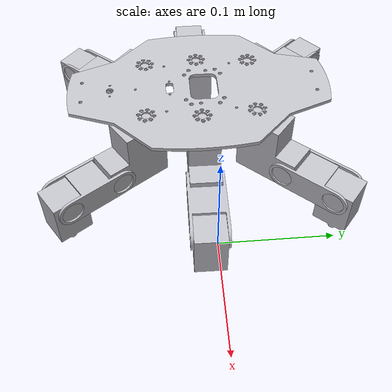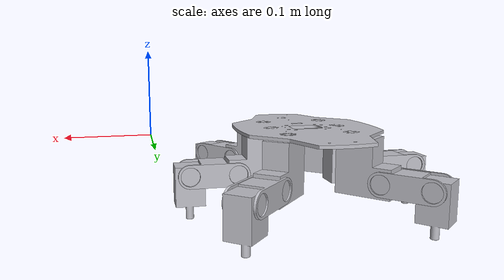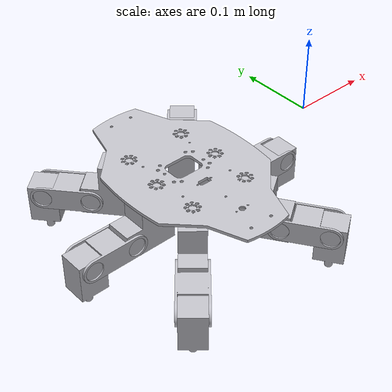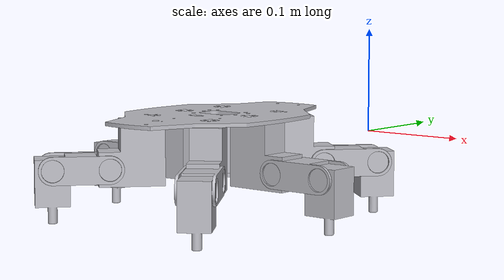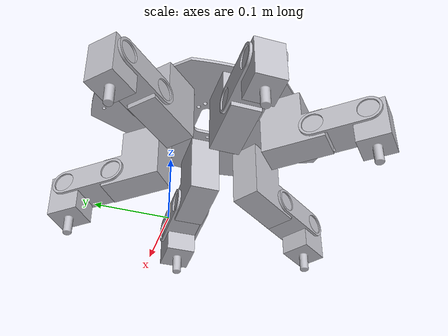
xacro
<?xml version="1.0" ?>
<robot name="(Unsaved)" xmlns:xacro="http://www.ros.org/wiki/xacro">

<xacro:include filename="materials.xacro" />

<link name="base_link">
  <inertial>
    <origin xyz="-0.19747326793103112 0.0011545818939354344 0.001999156859975229" rpy="0 0 0"/>
    <mass value="1.0602977360982548"/>
    <inertia ixx="0.005088" iyy="0.002124" izz="0.007209" ixy="1.5e-05" iyz="1e-06" ixz="0.0"/>
  </inertial>
  <visual>
    <origin xyz="0 0 0" rpy="0 0 0"/>
    <geometry>
      <mesh filename="base_link.stl" scale="0.001 0.001 0.001"/>
    </geometry>
    <material name="silver"/>
  </visual>
  <collision>
    <origin xyz="0 0 0" rpy="0 0 0"/>
    <geometry>
      <mesh filename="base_link.stl" scale="0.001 0.001 0.001"/>
    </geometry>
  </collision>
</link>

<link name="teta1_1">
  <inertial>
    <origin xyz="0.007457738610655351 -0.033495925310553426 0.0005597644070481703" rpy="0 0 0"/>
    <mass value="0.322485513471676"/>
    <inertia ixx="7.4e-05" iyy="7.3e-05" izz="9.9e-05" ixy="3e-06" iyz="1e-06" ixz="-1e-06"/>
  </inertial>
  <visual>
    <origin xyz="0.114018 0.08132 0.0515" rpy="0 0 0"/>
    <geometry>
      <mesh filename="teta1_1.stl" scale="0.001 0.001 0.001"/>
    </geometry>
    <material name="silver"/>
  </visual>
  <collision>
    <origin xyz="0.114018 0.08132 0.0515" rpy="0 0 0"/>
    <geometry>
      <mesh filename="teta1_1.stl" scale="0.001 0.001 0.001"/>
    </geometry>
  </collision>
</link>

<link name="tibia1_1">
  <inertial>
    <origin xyz="0.01300075031251191 0.01014451022429283 -0.01383993691310137" rpy="0 0 0"/>
    <mass value="0.5005531081408972"/>
    <inertia ixx="0.000168" iyy="0.000167" izz="0.000102" ixy="5e-06" iyz="-3e-06" ixz="3e-06"/>
  </inertial>
  <visual>
    <origin xyz="0.099235 0.14816 0.049792" rpy="0 0 0"/>
    <geometry>
      <mesh filename="tibia1_1.stl" scale="0.001 0.001 0.001"/>
    </geometry>
    <material name="silver"/>
  </visual>
  <collision>
    <origin xyz="0.099235 0.14816 0.049792" rpy="0 0 0"/>
    <geometry>
      <mesh filename="tibia1_1.stl" scale="0.001 0.001 0.001"/>
    </geometry>
  </collision>
</link>

<link name="coxa1_1">
  <inertial>
    <origin xyz="0.012623331280600614 -0.014399972809350028 -0.03845464138452408" rpy="0 0 0"/>
    <mass value="1.0829342534788695"/>
    <inertia ixx="0.000688" iyy="0.00065" izz="0.000489" ixy="0.000143" iyz="-7.9e-05" ixz="6.9e-05"/>
  </inertial>
  <visual>
    <origin xyz="0.1571 0.05727 -0.0" rpy="0 0 0"/>
    <geometry>
      <mesh filename="coxa1_1.stl" scale="0.001 0.001 0.001"/>
    </geometry>
    <material name="silver"/>
  </visual>
  <collision>
    <origin xyz="0.1571 0.05727 -0.0" rpy="0 0 0"/>
    <geometry>
      <mesh filename="coxa1_1.stl" scale="0.001 0.001 0.001"/>
    </geometry>
  </collision>
</link>

<link name="teta2_1">
  <inertial>
    <origin xyz="0.03080650855798238 -0.01509942070888103 0.0009294869219693275" rpy="0 0 0"/>
    <mass value="0.322485513471676"/>
    <inertia ixx="7.1e-05" iyy="7.6e-05" izz="9.9e-05" ixy="-0.0" iyz="-0.0" ixz="-1e-06"/>
  </inertial>
  <visual>
    <origin xyz="0.106659 -0.01862 0.0515" rpy="0 0 0"/>
    <geometry>
      <mesh filename="teta2_1.stl" scale="0.001 0.001 0.001"/>
    </geometry>
    <material name="silver"/>
  </visual>
  <collision>
    <origin xyz="0.106659 -0.01862 0.0515" rpy="0 0 0"/>
    <geometry>
      <mesh filename="teta2_1.stl" scale="0.001 0.001 0.001"/>
    </geometry>
  </collision>
</link>

<link name="tibia2_1">
  <inertial>
    <origin xyz="-0.0011772196856956324 0.01642612539978206 -0.013866134636234297" rpy="0 0 0"/>
    <mass value="0.5005531081408972"/>
    <inertia ixx="0.000163" iyy="0.000172" izz="0.000101" ixy="-0.0" iyz="0.0" ixz="-2e-06"/>
  </inertial>
  <visual>
    <origin xyz="0.045218 0.011587 0.050239" rpy="0 0 0"/>
    <geometry>
      <mesh filename="tibia2_1.stl" scale="0.001 0.001 0.001"/>
    </geometry>
    <material name="silver"/>
  </visual>
  <collision>
    <origin xyz="0.045218 0.011587 0.050239" rpy="0 0 0"/>
    <geometry>
      <mesh filename="tibia2_1.stl" scale="0.001 0.001 0.001"/>
    </geometry>
  </collision>
</link>

<link name="coxa2_1">
  <inertial>
    <origin xyz="0.019130272556860894 0.0008632369545831863 -0.03845464138452424" rpy="0 0 0"/>
    <mass value="1.0829342534788695"/>
    <inertia ixx="0.000525" iyy="0.000813" izz="0.000489" ixy="-1.3e-05" iyz="5e-06" ixz="0.000105"/>
  </inertial>
  <visual>
    <origin xyz="0.152351 -0.0 -0.0" rpy="0 0 0"/>
    <geometry>
      <mesh filename="coxa2_1.stl" scale="0.001 0.001 0.001"/>
    </geometry>
    <material name="silver"/>
  </visual>
  <collision>
    <origin xyz="0.152351 -0.0 -0.0" rpy="0 0 0"/>
    <geometry>
      <mesh filename="coxa2_1.stl" scale="0.001 0.001 0.001"/>
    </geometry>
  </collision>
</link>

<link name="teta3_1">
  <inertial>
    <origin xyz="0.03205389994058132 0.011802607043990956 -0.0002969308644088231" rpy="0 0 0"/>
    <mass value="0.322485513471676"/>
    <inertia ixx="7.4e-05" iyy="7.3e-05" izz="9.9e-05" ixy="-3e-06" iyz="-0.0" ixz="-0.0"/>
  </inertial>
  <visual>
    <origin xyz="0.139127 -0.103221 0.0515" rpy="0 0 0"/>
    <geometry>
      <mesh filename="teta3_1.stl" scale="0.001 0.001 0.001"/>
    </geometry>
    <material name="silver"/>
  </visual>
  <collision>
    <origin xyz="0.139127 -0.103221 0.0515" rpy="0 0 0"/>
    <geometry>
      <mesh filename="teta3_1.stl" scale="0.001 0.001 0.001"/>
    </geometry>
  </collision>
</link>

<link name="tibia3_1">
  <inertial>
    <origin xyz="-0.012443498606944797 0.010778592092196643 -0.013872883963235084" rpy="0 0 0"/>
    <mass value="0.5005531081408972"/>
    <inertia ixx="0.000168" iyy="0.000167" izz="0.000101" ixy="-4e-06" iyz="0.0" ixz="-0.0"/>
  </inertial>
  <visual>
    <origin xyz="0.074899 -0.126966 0.0515" rpy="0 0 0"/>
    <geometry>
      <mesh filename="tibia3_1.stl" scale="0.001 0.001 0.001"/>
    </geometry>
    <material name="silver"/>
  </visual>
  <collision>
    <origin xyz="0.074899 -0.126966 0.0515" rpy="0 0 0"/>
    <geometry>
      <mesh filename="tibia3_1.stl" scale="0.001 0.001 0.001"/>
    </geometry>
  </collision>
</link>

<link name="coxa3_1">
  <inertial>
    <origin xyz="0.012550506304740416 0.01446349281278922 -0.038454641384523994" rpy="0 0 0"/>
    <mass value="1.0829342534788695"/>
    <inertia ixx="0.000689" iyy="0.000649" izz="0.000489" ixy="-0.000143" iyz="7.9e-05" ixz="6.9e-05"/>
  </inertial>
  <visual>
    <origin xyz="0.1571 -0.05727 -0.0" rpy="0 0 0"/>
    <geometry>
      <mesh filename="coxa3_1.stl" scale="0.001 0.001 0.001"/>
    </geometry>
    <material name="silver"/>
  </visual>
  <collision>
    <origin xyz="0.1571 -0.05727 -0.0" rpy="0 0 0"/>
    <geometry>
      <mesh filename="coxa3_1.stl" scale="0.001 0.001 0.001"/>
    </geometry>
  </collision>
</link>

<link name="teta4_1">
  <inertial>
    <origin xyz="-0.007231179844230107 0.033548934178161266 -0.0002969308644086843" rpy="0 0 0"/>
    <mass value="0.322485513471676"/>
    <inertia ixx="7.4e-05" iyy="7.3e-05" izz="9.9e-05" ixy="3e-06" iyz="0.0" ixz="-0.0"/>
  </inertial>
  <visual>
    <origin xyz="0.280518 -0.081614 0.0515" rpy="0 0 0"/>
    <geometry>
      <mesh filename="teta4_1.stl" scale="0.001 0.001 0.001"/>
    </geometry>
    <material name="silver"/>
  </visual>
  <collision>
    <origin xyz="0.280518 -0.081614 0.0515" rpy="0 0 0"/>
    <geometry>
      <mesh filename="teta4_1.stl" scale="0.001 0.001 0.001"/>
    </geometry>
  </collision>
</link>

<link name="tibia4_1">
  <inertial>
    <origin xyz="-0.012444027191681306 -0.010778842746671374 -0.013872883963234932" rpy="0 0 0"/>
    <mass value="0.5005531081408972"/>
    <inertia ixx="0.000168" iyy="0.000167" izz="0.000101" ixy="4e-06" iyz="-0.0" ixz="-0.0"/>
  </inertial>
  <visual>
    <origin xyz="0.294859 -0.148572 0.0515" rpy="0 0 0"/>
    <geometry>
      <mesh filename="tibia4_1.stl" scale="0.001 0.001 0.001"/>
    </geometry>
    <material name="silver"/>
  </visual>
  <collision>
    <origin xyz="0.294859 -0.148572 0.0515" rpy="0 0 0"/>
    <geometry>
      <mesh filename="tibia4_1.stl" scale="0.001 0.001 0.001"/>
    </geometry>
  </collision>
</link>

<link name="coxa4_1">
  <inertial>
    <origin xyz="-0.012525182858772466 0.014485940570305444 -0.03845464138452389" rpy="0 0 0"/>
    <mass value="1.0829342534788695"/>
    <inertia ixx="0.00069" iyy="0.000648" izz="0.000489" ixy="0.000143" iyz="8e-05" ixz="-6.9e-05"/>
  </inertial>
  <visual>
    <origin xyz="0.237601 -0.05727 -0.0" rpy="0 0 0"/>
    <geometry>
      <mesh filename="coxa4_1.stl" scale="0.001 0.001 0.001"/>
    </geometry>
    <material name="silver"/>
  </visual>
  <collision>
    <origin xyz="0.237601 -0.05727 -0.0" rpy="0 0 0"/>
    <geometry>
      <mesh filename="coxa4_1.stl" scale="0.001 0.001 0.001"/>
    </geometry>
  </collision>
</link>

<link name="teta5_1">
  <inertial>
    <origin xyz="-0.03014949429074193 0.016394643449314152 -0.0002969308644087121" rpy="0 0 0"/>
    <mass value="0.322485513471676"/>
    <inertia ixx="7.1e-05" iyy="7.6e-05" izz="9.9e-05" ixy="-0.0" iyz="-0.0" ixz="-0.0"/>
  </inertial>
  <visual>
    <origin xyz="0.288793 0.016662 0.0515" rpy="0 0 0"/>
    <geometry>
      <mesh filename="teta5_1.stl" scale="0.001 0.001 0.001"/>
    </geometry>
    <material name="silver"/>
  </visual>
  <collision>
    <origin xyz="0.288793 0.016662 0.0515" rpy="0 0 0"/>
    <geometry>
      <mesh filename="teta5_1.stl" scale="0.001 0.001 0.001"/>
    </geometry>
  </collision>
</link>

<link name="tibia6_1">
  <inertial>
    <origin xyz="5.772391614522476e-05 -0.016462667283913355 -0.013872883963234946" rpy="0 0 0"/>
    <mass value="0.5005531081408972"/>
    <inertia ixx="0.000163" iyy="0.000172" izz="0.000101" ixy="-0.0" iyz="-0.0" ixz="0.0"/>
  </inertial>
  <visual>
    <origin xyz="0.348908 -0.016128 0.0515" rpy="0 0 0"/>
    <geometry>
      <mesh filename="tibia6_1.stl" scale="0.001 0.001 0.001"/>
    </geometry>
    <material name="silver"/>
  </visual>
  <collision>
    <origin xyz="0.348908 -0.016128 0.0515" rpy="0 0 0"/>
    <geometry>
      <mesh filename="tibia6_1.stl" scale="0.001 0.001 0.001"/>
    </geometry>
  </collision>
</link>

<link name="coxa5_1">
  <inertial>
    <origin xyz="-0.01914926572398204 -4.970195210862727e-05 -0.038454641384523945" rpy="0 0 0"/>
    <mass value="1.0829342534788695"/>
    <inertia ixx="0.000525" iyy="0.000813" izz="0.000489" ixy="-0.0" iyz="-0.0" ixz="-0.000105"/>
  </inertial>
  <visual>
    <origin xyz="0.242351 -0.0 -0.0" rpy="0 0 0"/>
    <geometry>
      <mesh filename="coxa5_1.stl" scale="0.001 0.001 0.001"/>
    </geometry>
    <material name="silver"/>
  </visual>
  <collision>
    <origin xyz="0.242351 -0.0 -0.0" rpy="0 0 0"/>
    <geometry>
      <mesh filename="coxa5_1.stl" scale="0.001 0.001 0.001"/>
    </geometry>
  </collision>
</link>

<link name="teta6_1">
  <inertial>
    <origin xyz="-0.03217417984423032 -0.011941934178161306 -0.0002969308644086427" rpy="0 0 0"/>
    <mass value="0.322485513471676"/>
    <inertia ixx="7.4e-05" iyy="7.3e-05" izz="9.9e-05" ixy="-3e-06" iyz="-0.0" ixz="-0.0"/>
  </inertial>
  <visual>
    <origin xyz="0.255575 0.103221 0.0515" rpy="0 0 0"/>
    <geometry>
      <mesh filename="teta6_1.stl" scale="0.001 0.001 0.001"/>
    </geometry>
    <material name="silver"/>
  </visual>
  <collision>
    <origin xyz="0.255575 0.103221 0.0515" rpy="0 0 0"/>
    <geometry>
      <mesh filename="teta6_1.stl" scale="0.001 0.001 0.001"/>
    </geometry>
  </collision>
</link>

<link name="tibia5_1">
  <inertial>
    <origin xyz="0.012443907652835318 -0.010778592092196587 -0.013872883963234918" rpy="0 0 0"/>
    <mass value="0.5005531081408972"/>
    <inertia ixx="0.000168" iyy="0.000167" izz="0.000101" ixy="-4e-06" iyz="-0.0" ixz="0.0"/>
  </inertial>
  <visual>
    <origin xyz="0.319803 0.126966 0.0515" rpy="0 0 0"/>
    <geometry>
      <mesh filename="tibia5_1.stl" scale="0.001 0.001 0.001"/>
    </geometry>
    <material name="silver"/>
  </visual>
  <collision>
    <origin xyz="0.319803 0.126966 0.0515" rpy="0 0 0"/>
    <geometry>
      <mesh filename="tibia5_1.stl" scale="0.001 0.001 0.001"/>
    </geometry>
  </collision>
</link>

<link name="coxa6_1">
  <inertial>
    <origin xyz="-0.012551097258850008 -0.014463492812789358 -0.03845464138452392" rpy="0 0 0"/>
    <mass value="1.0829342534788695"/>
    <inertia ixx="0.000689" iyy="0.000649" izz="0.000489" ixy="-0.000143" iyz="-7.9e-05" ixz="-6.9e-05"/>
  </inertial>
  <visual>
    <origin xyz="0.237601 0.05727 -0.0" rpy="0 0 0"/>
    <geometry>
      <mesh filename="coxa6_1.stl" scale="0.001 0.001 0.001"/>
    </geometry>
    <material name="silver"/>
  </visual>
  <collision>
    <origin xyz="0.237601 0.05727 -0.0" rpy="0 0 0"/>
    <geometry>
      <mesh filename="coxa6_1.stl" scale="0.001 0.001 0.001"/>
    </geometry>
  </collision>
</link>

<joint name="Revolute 1" type="revolute">
  <origin xyz="0.043082 -0.02405 -0.0515" rpy="0 0 0"/>
  <parent link="coxa1_1"/>
  <child link="teta1_1"/>
  <axis xyz="0.75136 0.659893 -0.0"/>
  <limit upper="1.570796" lower="-1.570796" effort="100" velocity="100"/>
</joint>

<joint name="Revolute 2" type="revolute">
  <origin xyz="0.014783 -0.06684 0.001708" rpy="0 0 0"/>
  <parent link="teta1_1"/>
  <child link="tibia1_1"/>
  <axis xyz="0.75136 0.659893 -0.0"/>
  <limit upper="1.612352" lower="-1.570796" effort="100" velocity="100"/>
</joint>

<joint name="Revolute 3" type="revolute">
  <origin xyz="-0.1571 -0.05727 0.0" rpy="0 0 0"/>
  <parent link="base_link"/>
  <child link="coxa1_1"/>
  <axis xyz="0.0 0.0 1.0"/>
  <limit upper="1.570796" lower="-0.785398" effort="100" velocity="100"/>
</joint>

<joint name="Revolute 4" type="revolute">
  <origin xyz="0.045692 0.01862 -0.0515" rpy="0 0 0"/>
  <parent link="coxa2_1"/>
  <child link="teta2_1"/>
  <axis xyz="-0.045973 0.998943 -0.0"/>
  <limit upper="1.570796" lower="-1.570796" effort="100" velocity="100"/>
</joint>

<joint name="Revolute 5" type="revolute">
  <origin xyz="0.061441 -0.030207 0.001261" rpy="0 0 0"/>
  <parent link="teta2_1"/>
  <child link="tibia2_1"/>
  <axis xyz="0.045973 -0.998943 0.0"/>
  <limit upper="1.570796" lower="-1.570796" effort="100" velocity="100"/>
</joint>

<joint name="Revolute 6" type="revolute">
  <origin xyz="-0.152351 0.0 0.0" rpy="0 0 0"/>
  <parent link="base_link"/>
  <child link="coxa2_1"/>
  <axis xyz="0.0 0.0 -1.0"/>
  <limit upper="1.570796" lower="-1.570796" effort="100" velocity="100"/>
</joint>

<joint name="Revolute 7" type="revolute">
  <origin xyz="0.017973 0.045951 -0.0515" rpy="0 0 0"/>
  <parent link="coxa3_1"/>
  <child link="teta3_1"/>
  <axis xyz="-0.755853 0.654741 -0.0"/>
  <limit upper="1.570796" lower="-1.570796" effort="100" velocity="100"/>
</joint>

<joint name="Revolute 8" type="revolute">
  <origin xyz="0.064228 0.023745 0.0" rpy="0 0 0"/>
  <parent link="teta3_1"/>
  <child link="tibia3_1"/>
  <axis xyz="0.755853 -0.654741 0.0"/>
  <limit upper="1.570796" lower="-1.570796" effort="100" velocity="100"/>
</joint>

<joint name="Revolute 9" type="revolute">
  <origin xyz="-0.1571 0.05727 0.0" rpy="0 0 0"/>
  <parent link="base_link"/>
  <child link="coxa3_1"/>
  <axis xyz="0.0 0.0 -1.0"/>
  <limit upper="1.570796" lower="-0.596903" effort="100" velocity="100"/>
</joint>

<joint name="Revolute 10" type="revolute">
  <origin xyz="-0.042917 0.024344 -0.0515" rpy="0 0 0"/>
  <parent link="coxa4_1"/>
  <child link="teta4_1"/>
  <axis xyz="-0.755853 -0.654741 -0.0"/>
  <limit upper="1.570796" lower="-1.570796" effort="100" velocity="100"/>
</joint>

<joint name="Revolute 11" type="revolute">
  <origin xyz="-0.014341 0.066958 0.0" rpy="0 0 0"/>
  <parent link="teta4_1"/>
  <child link="tibia4_1"/>
  <axis xyz="-0.755853 -0.654741 -0.0"/>
  <limit upper="1.570796" lower="-1.570796" effort="100" velocity="100"/>
</joint>

<joint name="Revolute 12" type="revolute">
  <origin xyz="-0.237601 0.05727 0.0" rpy="0 0 0"/>
  <parent link="base_link"/>
  <child link="coxa4_1"/>
  <axis xyz="0.0 0.0 1.0"/>
  <limit upper="1.570796" lower="-1.103286" effort="100" velocity="100"/>
</joint>

<joint name="Revolute 13" type="revolute">
  <origin xyz="-0.046442 -0.016662 -0.0515" rpy="0 0 0"/>
  <parent link="coxa5_1"/>
  <child link="teta5_1"/>
  <axis xyz="0.003491 -0.999994 0.0"/>
  <limit upper="1.570796" lower="-1.570796" effort="100" velocity="100"/>
</joint>

<joint name="Revolute 14" type="revolute">
  <origin xyz="-0.060115 0.03279 0.0" rpy="0 0 0"/>
  <parent link="teta5_1"/>
  <child link="tibia6_1"/>
  <axis xyz="0.003491 -0.999994 0.0"/>
  <limit upper="1.570796" lower="-1.570796" effort="100" velocity="100"/>
</joint>

<joint name="Revolute 15" type="revolute">
  <origin xyz="-0.242351 0.0 0.0" rpy="0 0 0"/>
  <parent link="base_link"/>
  <child link="coxa5_1"/>
  <axis xyz="0.0 0.0 -1.0"/>
  <limit upper="1.570796" lower="-1.570796" effort="100" velocity="100"/>
</joint>

<joint name="Revolute 16" type="revolute">
  <origin xyz="-0.017974 -0.045951 -0.0515" rpy="0 0 0"/>
  <parent link="coxa6_1"/>
  <child link="teta6_1"/>
  <axis xyz="0.755853 -0.654741 -0.0"/>
  <limit upper="1.570796" lower="-1.570796" effort="100" velocity="100"/>
</joint>

<joint name="Revolute 17" type="revolute">
  <origin xyz="-0.064228 -0.023745 0.0" rpy="0 0 0"/>
  <parent link="teta6_1"/>
  <child link="tibia5_1"/>
  <axis xyz="0.755853 -0.654741 -0.0"/>
  <limit upper="1.570796" lower="-1.570796" effort="100" velocity="100"/>
</joint>

<joint name="Revolute 18" type="revolute">
  <origin xyz="-0.237601 -0.05727 0.0" rpy="0 0 0"/>
  <parent link="base_link"/>
  <child link="coxa6_1"/>
  <axis xyz="0.0 0.0 -1.0"/>
  <limit upper="1.570796" lower="-0.704255" effort="100" velocity="100"/>
</joint>

</robot>
